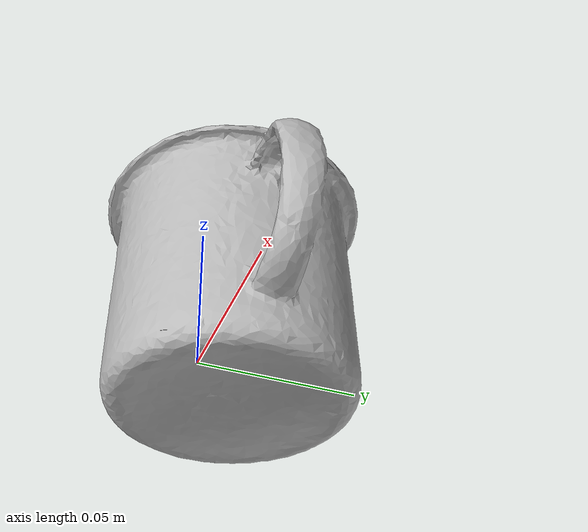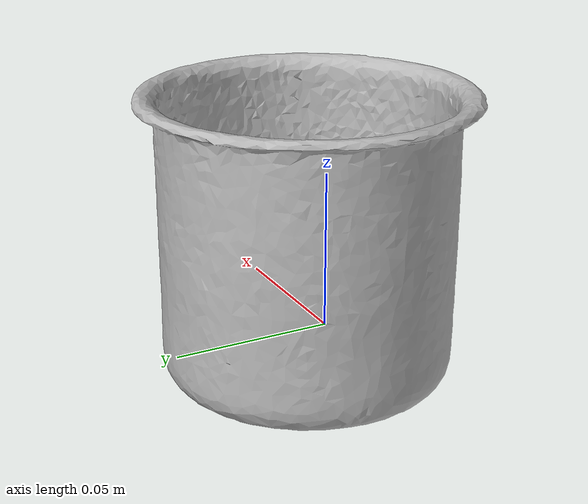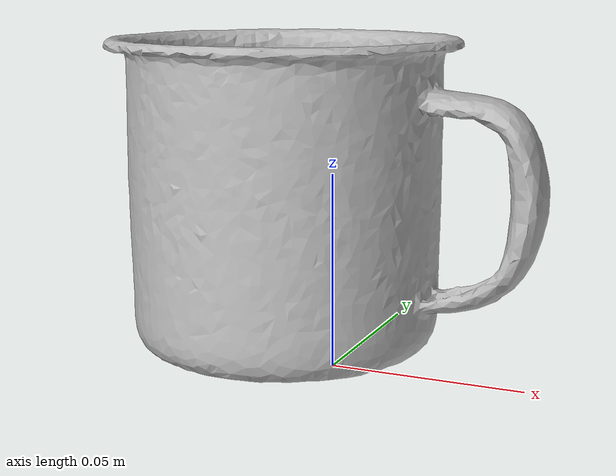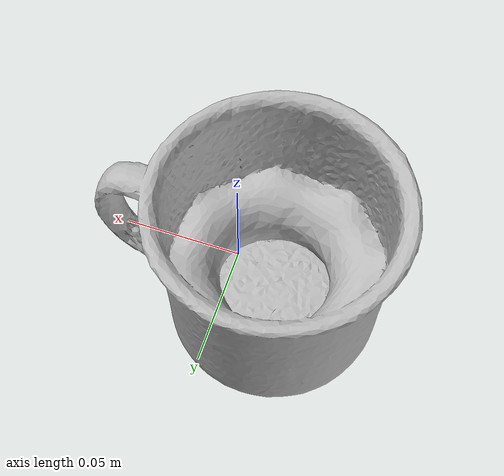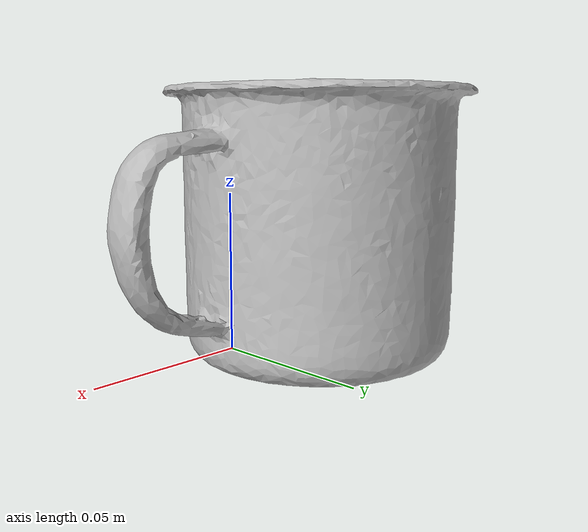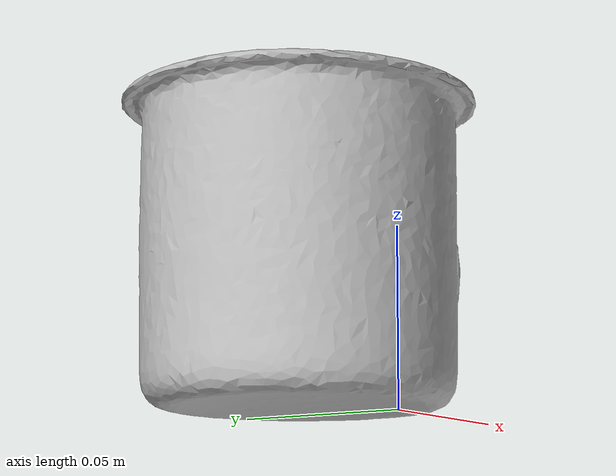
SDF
<?xml version='1.0'?>
<sdf version="1.4">
  <model name="mug">
    <static>false</static>
    <link name="base_link_mug">
      <inertial>
        <pose>-0.018858606464151616 0.01657296231165061 0.026898852026976835 2.218343732653009 -1.4689543656478905 -2.250504947674468</pose>
        <mass>0.00013812094844812262</mass>
        <inertia>
          <ixx>1.72859690131249e-07</ixx>
          <ixy>-4.380588380977221e-23</ixy>
          <ixz>4.739721259615292e-24</ixz>
          <iyy>1.3507073823129273e-07</iyy>
          <iyz>-1.395595364964649e-24</iyz>
          <izz>1.1879517405979701e-07</izz>
        </inertia>
      </inertial>
      <collision name="collision">
        <geometry>
          <mesh>
            <!-- Use a downsampled mesh for collisions -->
            <uri>../meshes/textured.obj</uri>
	        </mesh>
        </geometry>
        <surface>
      </surface>
      </collision>
      <visual name="visual">
        <geometry>
          <mesh>
            <uri>../meshes/textured.obj</uri>
	        </mesh>
        </geometry>
        <material>
          <script>
            <uri>../mug.material</uri>
            <name>mug</name>
          </script>
        </material>
      </visual>
    </link>
  </model>
</sdf>
